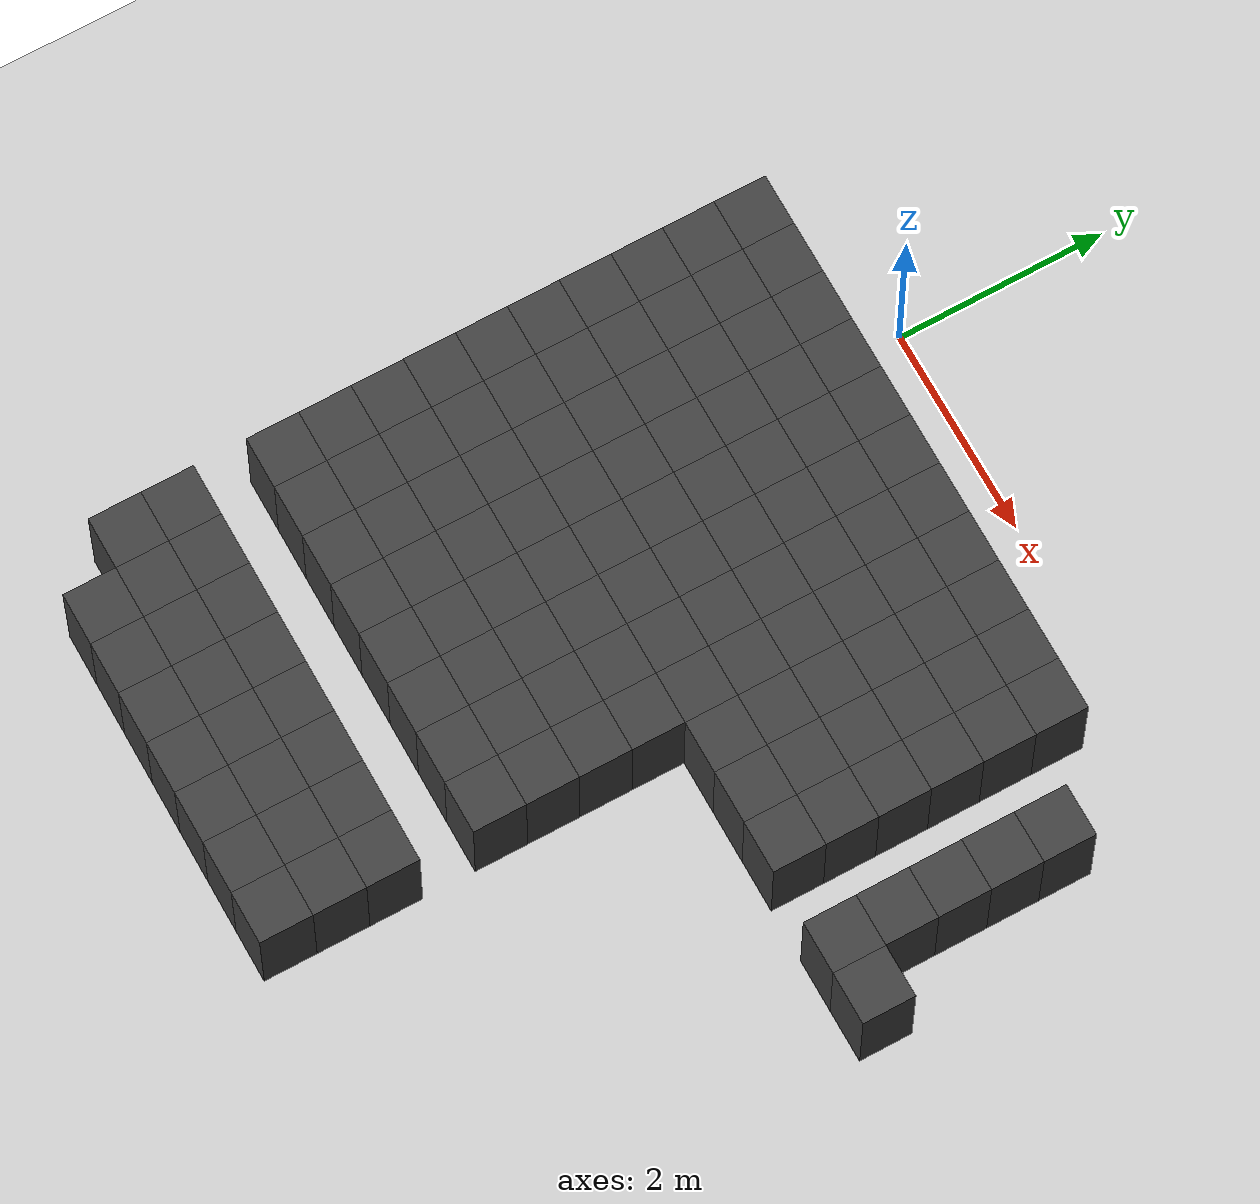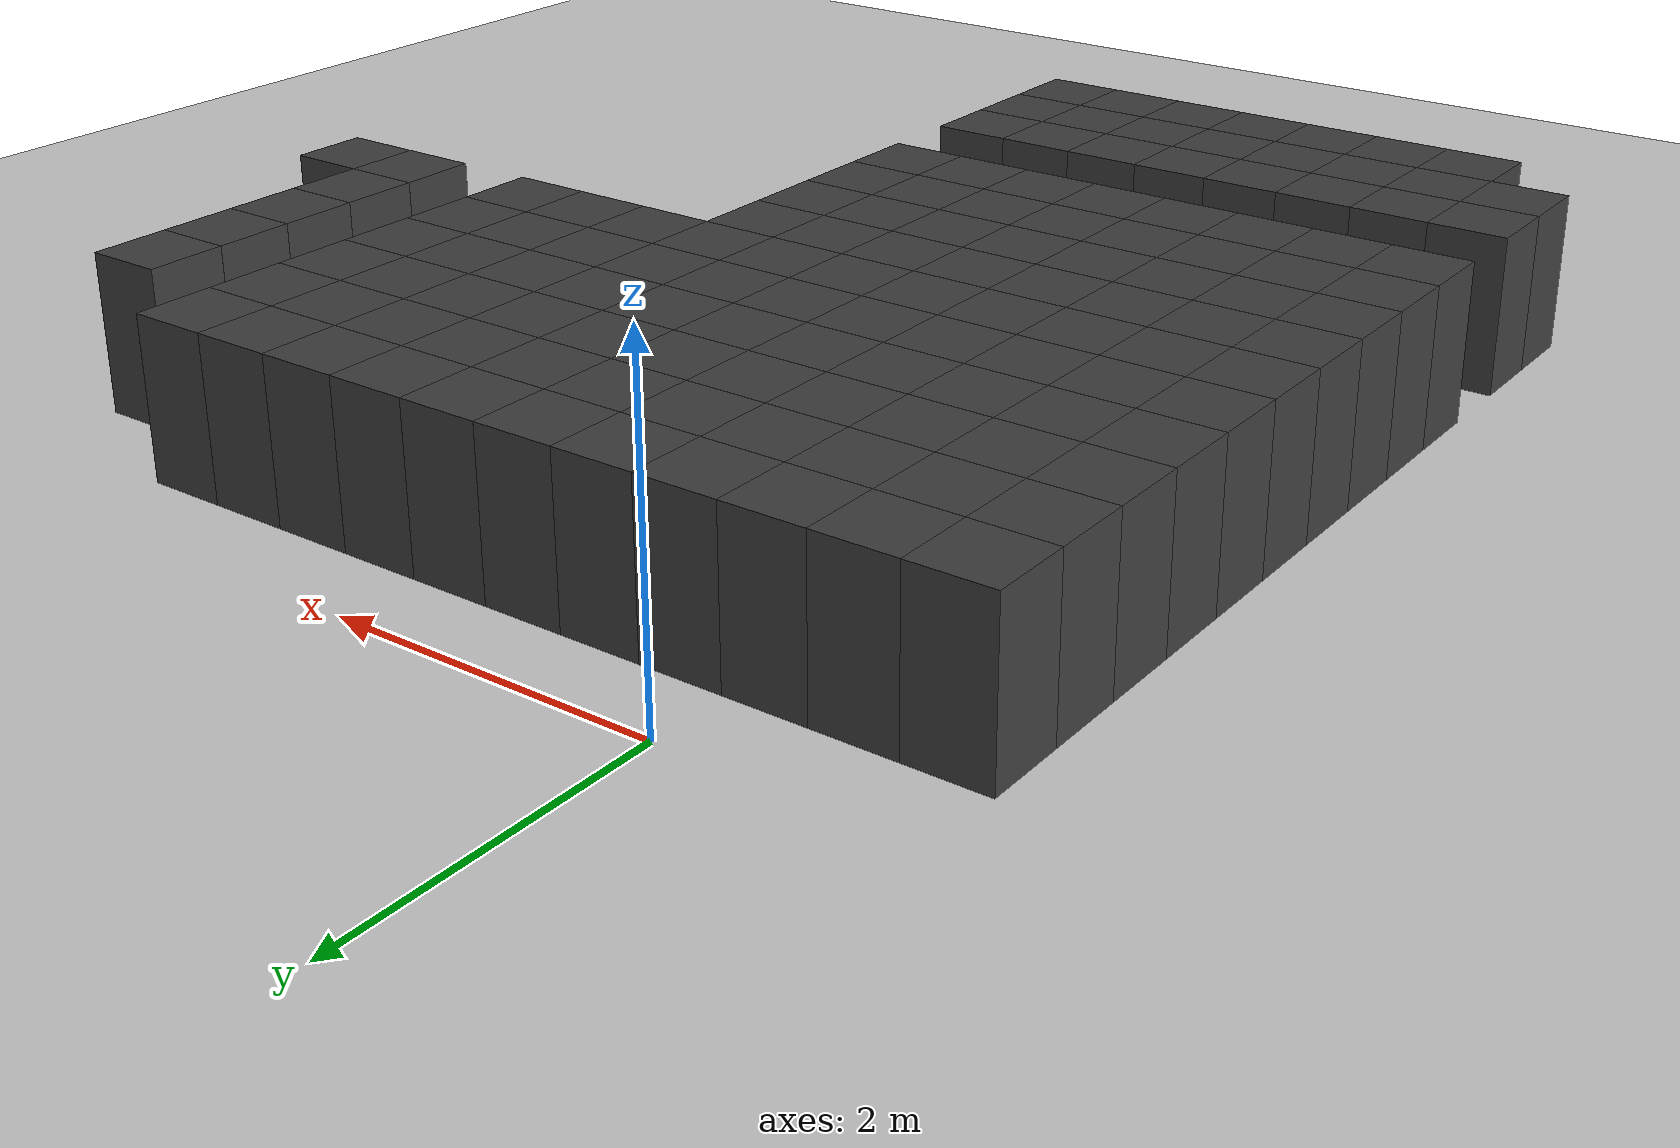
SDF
<sdf version="1.7">
 <world name="map_10777">
  <model name="ground_plane">
   <static>true</static>
   <link name="link">
    <collision name="collision">
     <geometry><plane><normal>0 0 1</normal><size>200 200</size></plane></geometry>
    </collision>
    <visual name="visual">
     <geometry><plane><normal>0 0 1</normal><size>200 200</size></plane></geometry>
     <material><ambient>0.8 0.8 0.8 1</ambient><diffuse>0.8 0.8 0.8 1</diffuse></material>
    </visual>
   </link>
  </model>
  <model name="maze_environment">
   <static>true</static>
   <link name="wall_1194">
    <pose>-1.250 -0.750 0.500 0 0 0</pose>
    <collision name="col"><geometry><box><size>0.5 0.5 1.0</size></box></geometry></collision>
    <visual name="vis">
     <geometry><box><size>0.5 0.5 1.0</size></box></geometry>
     <material><ambient>0.15 0.15 0.15 1</ambient><diffuse>0.25 0.25 0.25 1</diffuse></material>
    </visual>
   </link>
   <link name="wall_1195">
    <pose>-0.750 -0.750 0.500 0 0 0</pose>
    <collision name="col"><geometry><box><size>0.5 0.5 1.0</size></box></geometry></collision>
    <visual name="vis">
     <geometry><box><size>0.5 0.5 1.0</size></box></geometry>
     <material><ambient>0.15 0.15 0.15 1</ambient><diffuse>0.25 0.25 0.25 1</diffuse></material>
    </visual>
   </link>
   <link name="wall_1196">
    <pose>-0.250 -0.750 0.500 0 0 0</pose>
    <collision name="col"><geometry><box><size>0.5 0.5 1.0</size></box></geometry></collision>
    <visual name="vis">
     <geometry><box><size>0.5 0.5 1.0</size></box></geometry>
     <material><ambient>0.15 0.15 0.15 1</ambient><diffuse>0.25 0.25 0.25 1</diffuse></material>
    </visual>
   </link>
   <link name="wall_1197">
    <pose>0.250 -0.750 0.500 0 0 0</pose>
    <collision name="col"><geometry><box><size>0.5 0.5 1.0</size></box></geometry></collision>
    <visual name="vis">
     <geometry><box><size>0.5 0.5 1.0</size></box></geometry>
     <material><ambient>0.15 0.15 0.15 1</ambient><diffuse>0.25 0.25 0.25 1</diffuse></material>
    </visual>
   </link>
   <link name="wall_1198">
    <pose>0.750 -0.750 0.500 0 0 0</pose>
    <collision name="col"><geometry><box><size>0.5 0.5 1.0</size></box></geometry></collision>
    <visual name="vis">
     <geometry><box><size>0.5 0.5 1.0</size></box></geometry>
     <material><ambient>0.15 0.15 0.15 1</ambient><diffuse>0.25 0.25 0.25 1</diffuse></material>
    </visual>
   </link>
   <link name="wall_1199">
    <pose>1.250 -0.750 0.500 0 0 0</pose>
    <collision name="col"><geometry><box><size>0.5 0.5 1.0</size></box></geometry></collision>
    <visual name="vis">
     <geometry><box><size>0.5 0.5 1.0</size></box></geometry>
     <material><ambient>0.15 0.15 0.15 1</ambient><diffuse>0.25 0.25 0.25 1</diffuse></material>
    </visual>
   </link>
   <link name="wall_1200">
    <pose>1.750 -0.750 0.500 0 0 0</pose>
    <collision name="col"><geometry><box><size>0.5 0.5 1.0</size></box></geometry></collision>
    <visual name="vis">
     <geometry><box><size>0.5 0.5 1.0</size></box></geometry>
     <material><ambient>0.15 0.15 0.15 1</ambient><diffuse>0.25 0.25 0.25 1</diffuse></material>
    </visual>
   </link>
   <link name="wall_1201">
    <pose>2.250 -0.750 0.500 0 0 0</pose>
    <collision name="col"><geometry><box><size>0.5 0.5 1.0</size></box></geometry></collision>
    <visual name="vis">
     <geometry><box><size>0.5 0.5 1.0</size></box></geometry>
     <material><ambient>0.15 0.15 0.15 1</ambient><diffuse>0.25 0.25 0.25 1</diffuse></material>
    </visual>
   </link>
   <link name="wall_1202">
    <pose>2.750 -0.750 0.500 0 0 0</pose>
    <collision name="col"><geometry><box><size>0.5 0.5 1.0</size></box></geometry></collision>
    <visual name="vis">
     <geometry><box><size>0.5 0.5 1.0</size></box></geometry>
     <material><ambient>0.15 0.15 0.15 1</ambient><diffuse>0.25 0.25 0.25 1</diffuse></material>
    </visual>
   </link>
   <link name="wall_1203">
    <pose>3.250 -0.750 0.500 0 0 0</pose>
    <collision name="col"><geometry><box><size>0.5 0.5 1.0</size></box></geometry></collision>
    <visual name="vis">
     <geometry><box><size>0.5 0.5 1.0</size></box></geometry>
     <material><ambient>0.15 0.15 0.15 1</ambient><diffuse>0.25 0.25 0.25 1</diffuse></material>
    </visual>
   </link>
   <link name="wall_1204">
    <pose>3.750 -0.750 0.500 0 0 0</pose>
    <collision name="col"><geometry><box><size>0.5 0.5 1.0</size></box></geometry></collision>
    <visual name="vis">
     <geometry><box><size>0.5 0.5 1.0</size></box></geometry>
     <material><ambient>0.15 0.15 0.15 1</ambient><diffuse>0.25 0.25 0.25 1</diffuse></material>
    </visual>
   </link>
   <link name="wall_1232">
    <pose>-1.250 -1.250 0.500 0 0 0</pose>
    <collision name="col"><geometry><box><size>0.5 0.5 1.0</size></box></geometry></collision>
    <visual name="vis">
     <geometry><box><size>0.5 0.5 1.0</size></box></geometry>
     <material><ambient>0.15 0.15 0.15 1</ambient><diffuse>0.25 0.25 0.25 1</diffuse></material>
    </visual>
   </link>
   <link name="wall_1233">
    <pose>-0.750 -1.250 0.500 0 0 0</pose>
    <collision name="col"><geometry><box><size>0.5 0.5 1.0</size></box></geometry></collision>
    <visual name="vis">
     <geometry><box><size>0.5 0.5 1.0</size></box></geometry>
     <material><ambient>0.15 0.15 0.15 1</ambient><diffuse>0.25 0.25 0.25 1</diffuse></material>
    </visual>
   </link>
   <link name="wall_1234">
    <pose>-0.250 -1.250 0.500 0 0 0</pose>
    <collision name="col"><geometry><box><size>0.5 0.5 1.0</size></box></geometry></collision>
    <visual name="vis">
     <geometry><box><size>0.5 0.5 1.0</size></box></geometry>
     <material><ambient>0.15 0.15 0.15 1</ambient><diffuse>0.25 0.25 0.25 1</diffuse></material>
    </visual>
   </link>
   <link name="wall_1235">
    <pose>0.250 -1.250 0.500 0 0 0</pose>
    <collision name="col"><geometry><box><size>0.5 0.5 1.0</size></box></geometry></collision>
    <visual name="vis">
     <geometry><box><size>0.5 0.5 1.0</size></box></geometry>
     <material><ambient>0.15 0.15 0.15 1</ambient><diffuse>0.25 0.25 0.25 1</diffuse></material>
    </visual>
   </link>
   <link name="wall_1236">
    <pose>0.750 -1.250 0.500 0 0 0</pose>
    <collision name="col"><geometry><box><size>0.5 0.5 1.0</size></box></geometry></collision>
    <visual name="vis">
     <geometry><box><size>0.5 0.5 1.0</size></box></geometry>
     <material><ambient>0.15 0.15 0.15 1</ambient><diffuse>0.25 0.25 0.25 1</diffuse></material>
    </visual>
   </link>
   <link name="wall_1237">
    <pose>1.250 -1.250 0.500 0 0 0</pose>
    <collision name="col"><geometry><box><size>0.5 0.5 1.0</size></box></geometry></collision>
    <visual name="vis">
     <geometry><box><size>0.5 0.5 1.0</size></box></geometry>
     <material><ambient>0.15 0.15 0.15 1</ambient><diffuse>0.25 0.25 0.25 1</diffuse></material>
    </visual>
   </link>
   <link name="wall_1238">
    <pose>1.750 -1.250 0.500 0 0 0</pose>
    <collision name="col"><geometry><box><size>0.5 0.5 1.0</size></box></geometry></collision>
    <visual name="vis">
     <geometry><box><size>0.5 0.5 1.0</size></box></geometry>
     <material><ambient>0.15 0.15 0.15 1</ambient><diffuse>0.25 0.25 0.25 1</diffuse></material>
    </visual>
   </link>
   <link name="wall_1239">
    <pose>2.250 -1.250 0.500 0 0 0</pose>
    <collision name="col"><geometry><box><size>0.5 0.5 1.0</size></box></geometry></collision>
    <visual name="vis">
     <geometry><box><size>0.5 0.5 1.0</size></box></geometry>
     <material><ambient>0.15 0.15 0.15 1</ambient><diffuse>0.25 0.25 0.25 1</diffuse></material>
    </visual>
   </link>
   <link name="wall_1240">
    <pose>2.750 -1.250 0.500 0 0 0</pose>
    <collision name="col"><geometry><box><size>0.5 0.5 1.0</size></box></geometry></collision>
    <visual name="vis">
     <geometry><box><size>0.5 0.5 1.0</size></box></geometry>
     <material><ambient>0.15 0.15 0.15 1</ambient><diffuse>0.25 0.25 0.25 1</diffuse></material>
    </visual>
   </link>
   <link name="wall_1241">
    <pose>3.250 -1.250 0.500 0 0 0</pose>
    <collision name="col"><geometry><box><size>0.5 0.5 1.0</size></box></geometry></collision>
    <visual name="vis">
     <geometry><box><size>0.5 0.5 1.0</size></box></geometry>
     <material><ambient>0.15 0.15 0.15 1</ambient><diffuse>0.25 0.25 0.25 1</diffuse></material>
    </visual>
   </link>
   <link name="wall_1242">
    <pose>3.750 -1.250 0.500 0 0 0</pose>
    <collision name="col"><geometry><box><size>0.5 0.5 1.0</size></box></geometry></collision>
    <visual name="vis">
     <geometry><box><size>0.5 0.5 1.0</size></box></geometry>
     <material><ambient>0.15 0.15 0.15 1</ambient><diffuse>0.25 0.25 0.25 1</diffuse></material>
    </visual>
   </link>
   <link name="wall_1243">
    <pose>4.750 -1.250 0.500 0 0 0</pose>
    <collision name="col"><geometry><box><size>0.5 0.5 1.0</size></box></geometry></collision>
    <visual name="vis">
     <geometry><box><size>0.5 0.5 1.0</size></box></geometry>
     <material><ambient>0.15 0.15 0.15 1</ambient><diffuse>0.25 0.25 0.25 1</diffuse></material>
    </visual>
   </link>
   <link name="wall_1275">
    <pose>-1.250 -1.750 0.500 0 0 0</pose>
    <collision name="col"><geometry><box><size>0.5 0.5 1.0</size></box></geometry></collision>
    <visual name="vis">
     <geometry><box><size>0.5 0.5 1.0</size></box></geometry>
     <material><ambient>0.15 0.15 0.15 1</ambient><diffuse>0.25 0.25 0.25 1</diffuse></material>
    </visual>
   </link>
   <link name="wall_1276">
    <pose>-0.750 -1.750 0.500 0 0 0</pose>
    <collision name="col"><geometry><box><size>0.5 0.5 1.0</size></box></geometry></collision>
    <visual name="vis">
     <geometry><box><size>0.5 0.5 1.0</size></box></geometry>
     <material><ambient>0.15 0.15 0.15 1</ambient><diffuse>0.25 0.25 0.25 1</diffuse></material>
    </visual>
   </link>
   <link name="wall_1277">
    <pose>-0.250 -1.750 0.500 0 0 0</pose>
    <collision name="col"><geometry><box><size>0.5 0.5 1.0</size></box></geometry></collision>
    <visual name="vis">
     <geometry><box><size>0.5 0.5 1.0</size></box></geometry>
     <material><ambient>0.15 0.15 0.15 1</ambient><diffuse>0.25 0.25 0.25 1</diffuse></material>
    </visual>
   </link>
   <link name="wall_1278">
    <pose>0.250 -1.750 0.500 0 0 0</pose>
    <collision name="col"><geometry><box><size>0.5 0.5 1.0</size></box></geometry></collision>
    <visual name="vis">
     <geometry><box><size>0.5 0.5 1.0</size></box></geometry>
     <material><ambient>0.15 0.15 0.15 1</ambient><diffuse>0.25 0.25 0.25 1</diffuse></material>
    </visual>
   </link>
   <link name="wall_1279">
    <pose>0.750 -1.750 0.500 0 0 0</pose>
    <collision name="col"><geometry><box><size>0.5 0.5 1.0</size></box></geometry></collision>
    <visual name="vis">
     <geometry><box><size>0.5 0.5 1.0</size></box></geometry>
     <material><ambient>0.15 0.15 0.15 1</ambient><diffuse>0.25 0.25 0.25 1</diffuse></material>
    </visual>
   </link>
   <link name="wall_1280">
    <pose>1.250 -1.750 0.500 0 0 0</pose>
    <collision name="col"><geometry><box><size>0.5 0.5 1.0</size></box></geometry></collision>
    <visual name="vis">
     <geometry><box><size>0.5 0.5 1.0</size></box></geometry>
     <material><ambient>0.15 0.15 0.15 1</ambient><diffuse>0.25 0.25 0.25 1</diffuse></material>
    </visual>
   </link>
   <link name="wall_1281">
    <pose>1.750 -1.750 0.500 0 0 0</pose>
    <collision name="col"><geometry><box><size>0.5 0.5 1.0</size></box></geometry></collision>
    <visual name="vis">
     <geometry><box><size>0.5 0.5 1.0</size></box></geometry>
     <material><ambient>0.15 0.15 0.15 1</ambient><diffuse>0.25 0.25 0.25 1</diffuse></material>
    </visual>
   </link>
   <link name="wall_1282">
    <pose>2.250 -1.750 0.500 0 0 0</pose>
    <collision name="col"><geometry><box><size>0.5 0.5 1.0</size></box></geometry></collision>
    <visual name="vis">
     <geometry><box><size>0.5 0.5 1.0</size></box></geometry>
     <material><ambient>0.15 0.15 0.15 1</ambient><diffuse>0.25 0.25 0.25 1</diffuse></material>
    </visual>
   </link>
   <link name="wall_1283">
    <pose>2.750 -1.750 0.500 0 0 0</pose>
    <collision name="col"><geometry><box><size>0.5 0.5 1.0</size></box></geometry></collision>
    <visual name="vis">
     <geometry><box><size>0.5 0.5 1.0</size></box></geometry>
     <material><ambient>0.15 0.15 0.15 1</ambient><diffuse>0.25 0.25 0.25 1</diffuse></material>
    </visual>
   </link>
   <link name="wall_1284">
    <pose>3.250 -1.750 0.500 0 0 0</pose>
    <collision name="col"><geometry><box><size>0.5 0.5 1.0</size></box></geometry></collision>
    <visual name="vis">
     <geometry><box><size>0.5 0.5 1.0</size></box></geometry>
     <material><ambient>0.15 0.15 0.15 1</ambient><diffuse>0.25 0.25 0.25 1</diffuse></material>
    </visual>
   </link>
   <link name="wall_1285">
    <pose>3.750 -1.750 0.500 0 0 0</pose>
    <collision name="col"><geometry><box><size>0.5 0.5 1.0</size></box></geometry></collision>
    <visual name="vis">
     <geometry><box><size>0.5 0.5 1.0</size></box></geometry>
     <material><ambient>0.15 0.15 0.15 1</ambient><diffuse>0.25 0.25 0.25 1</diffuse></material>
    </visual>
   </link>
   <link name="wall_1286">
    <pose>4.750 -1.750 0.500 0 0 0</pose>
    <collision name="col"><geometry><box><size>0.5 0.5 1.0</size></box></geometry></collision>
    <visual name="vis">
     <geometry><box><size>0.5 0.5 1.0</size></box></geometry>
     <material><ambient>0.15 0.15 0.15 1</ambient><diffuse>0.25 0.25 0.25 1</diffuse></material>
    </visual>
   </link>
   <link name="wall_1318">
    <pose>-1.250 -2.250 0.500 0 0 0</pose>
    <collision name="col"><geometry><box><size>0.5 0.5 1.0</size></box></geometry></collision>
    <visual name="vis">
     <geometry><box><size>0.5 0.5 1.0</size></box></geometry>
     <material><ambient>0.15 0.15 0.15 1</ambient><diffuse>0.25 0.25 0.25 1</diffuse></material>
    </visual>
   </link>
   <link name="wall_1319">
    <pose>-0.750 -2.250 0.500 0 0 0</pose>
    <collision name="col"><geometry><box><size>0.5 0.5 1.0</size></box></geometry></collision>
    <visual name="vis">
     <geometry><box><size>0.5 0.5 1.0</size></box></geometry>
     <material><ambient>0.15 0.15 0.15 1</ambient><diffuse>0.25 0.25 0.25 1</diffuse></material>
    </visual>
   </link>
   <link name="wall_1320">
    <pose>-0.250 -2.250 0.500 0 0 0</pose>
    <collision name="col"><geometry><box><size>0.5 0.5 1.0</size></box></geometry></collision>
    <visual name="vis">
     <geometry><box><size>0.5 0.5 1.0</size></box></geometry>
     <material><ambient>0.15 0.15 0.15 1</ambient><diffuse>0.25 0.25 0.25 1</diffuse></material>
    </visual>
   </link>
   <link name="wall_1321">
    <pose>0.250 -2.250 0.500 0 0 0</pose>
    <collision name="col"><geometry><box><size>0.5 0.5 1.0</size></box></geometry></collision>
    <visual name="vis">
     <geometry><box><size>0.5 0.5 1.0</size></box></geometry>
     <material><ambient>0.15 0.15 0.15 1</ambient><diffuse>0.25 0.25 0.25 1</diffuse></material>
    </visual>
   </link>
   <link name="wall_1322">
    <pose>0.750 -2.250 0.500 0 0 0</pose>
    <collision name="col"><geometry><box><size>0.5 0.5 1.0</size></box></geometry></collision>
    <visual name="vis">
     <geometry><box><size>0.5 0.5 1.0</size></box></geometry>
     <material><ambient>0.15 0.15 0.15 1</ambient><diffuse>0.25 0.25 0.25 1</diffuse></material>
    </visual>
   </link>
   <link name="wall_1323">
    <pose>1.250 -2.250 0.500 0 0 0</pose>
    <collision name="col"><geometry><box><size>0.5 0.5 1.0</size></box></geometry></collision>
    <visual name="vis">
     <geometry><box><size>0.5 0.5 1.0</size></box></geometry>
     <material><ambient>0.15 0.15 0.15 1</ambient><diffuse>0.25 0.25 0.25 1</diffuse></material>
    </visual>
   </link>
   <link name="wall_1324">
    <pose>1.750 -2.250 0.500 0 0 0</pose>
    <collision name="col"><geometry><box><size>0.5 0.5 1.0</size></box></geometry></collision>
    <visual name="vis">
     <geometry><box><size>0.5 0.5 1.0</size></box></geometry>
     <material><ambient>0.15 0.15 0.15 1</ambient><diffuse>0.25 0.25 0.25 1</diffuse></material>
    </visual>
   </link>
   <link name="wall_1325">
    <pose>2.250 -2.250 0.500 0 0 0</pose>
    <collision name="col"><geometry><box><size>0.5 0.5 1.0</size></box></geometry></collision>
    <visual name="vis">
     <geometry><box><size>0.5 0.5 1.0</size></box></geometry>
     <material><ambient>0.15 0.15 0.15 1</ambient><diffuse>0.25 0.25 0.25 1</diffuse></material>
    </visual>
   </link>
   <link name="wall_1326">
    <pose>2.750 -2.250 0.500 0 0 0</pose>
    <collision name="col"><geometry><box><size>0.5 0.5 1.0</size></box></geometry></collision>
    <visual name="vis">
     <geometry><box><size>0.5 0.5 1.0</size></box></geometry>
     <material><ambient>0.15 0.15 0.15 1</ambient><diffuse>0.25 0.25 0.25 1</diffuse></material>
    </visual>
   </link>
   <link name="wall_1327">
    <pose>3.250 -2.250 0.500 0 0 0</pose>
    <collision name="col"><geometry><box><size>0.5 0.5 1.0</size></box></geometry></collision>
    <visual name="vis">
     <geometry><box><size>0.5 0.5 1.0</size></box></geometry>
     <material><ambient>0.15 0.15 0.15 1</ambient><diffuse>0.25 0.25 0.25 1</diffuse></material>
    </visual>
   </link>
   <link name="wall_1328">
    <pose>3.750 -2.250 0.500 0 0 0</pose>
    <collision name="col"><geometry><box><size>0.5 0.5 1.0</size></box></geometry></collision>
    <visual name="vis">
     <geometry><box><size>0.5 0.5 1.0</size></box></geometry>
     <material><ambient>0.15 0.15 0.15 1</ambient><diffuse>0.25 0.25 0.25 1</diffuse></material>
    </visual>
   </link>
   <link name="wall_1329">
    <pose>4.750 -2.250 0.500 0 0 0</pose>
    <collision name="col"><geometry><box><size>0.5 0.5 1.0</size></box></geometry></collision>
    <visual name="vis">
     <geometry><box><size>0.5 0.5 1.0</size></box></geometry>
     <material><ambient>0.15 0.15 0.15 1</ambient><diffuse>0.25 0.25 0.25 1</diffuse></material>
    </visual>
   </link>
   <link name="wall_1366">
    <pose>-1.250 -2.750 0.500 0 0 0</pose>
    <collision name="col"><geometry><box><size>0.5 0.5 1.0</size></box></geometry></collision>
    <visual name="vis">
     <geometry><box><size>0.5 0.5 1.0</size></box></geometry>
     <material><ambient>0.15 0.15 0.15 1</ambient><diffuse>0.25 0.25 0.25 1</diffuse></material>
    </visual>
   </link>
   <link name="wall_1367">
    <pose>-0.750 -2.750 0.500 0 0 0</pose>
    <collision name="col"><geometry><box><size>0.5 0.5 1.0</size></box></geometry></collision>
    <visual name="vis">
     <geometry><box><size>0.5 0.5 1.0</size></box></geometry>
     <material><ambient>0.15 0.15 0.15 1</ambient><diffuse>0.25 0.25 0.25 1</diffuse></material>
    </visual>
   </link>
   <link name="wall_1368">
    <pose>-0.250 -2.750 0.500 0 0 0</pose>
    <collision name="col"><geometry><box><size>0.5 0.5 1.0</size></box></geometry></collision>
    <visual name="vis">
     <geometry><box><size>0.5 0.5 1.0</size></box></geometry>
     <material><ambient>0.15 0.15 0.15 1</ambient><diffuse>0.25 0.25 0.25 1</diffuse></material>
    </visual>
   </link>
   <link name="wall_1369">
    <pose>0.250 -2.750 0.500 0 0 0</pose>
    <collision name="col"><geometry><box><size>0.5 0.5 1.0</size></box></geometry></collision>
    <visual name="vis">
     <geometry><box><size>0.5 0.5 1.0</size></box></geometry>
     <material><ambient>0.15 0.15 0.15 1</ambient><diffuse>0.25 0.25 0.25 1</diffuse></material>
    </visual>
   </link>
   <link name="wall_1370">
    <pose>0.750 -2.750 0.500 0 0 0</pose>
    <collision name="col"><geometry><box><size>0.5 0.5 1.0</size></box></geometry></collision>
    <visual name="vis">
     <geometry><box><size>0.5 0.5 1.0</size></box></geometry>
     <material><ambient>0.15 0.15 0.15 1</ambient><diffuse>0.25 0.25 0.25 1</diffuse></material>
    </visual>
   </link>
   <link name="wall_1371">
    <pose>1.250 -2.750 0.500 0 0 0</pose>
    <collision name="col"><geometry><box><size>0.5 0.5 1.0</size></box></geometry></collision>
    <visual name="vis">
     <geometry><box><size>0.5 0.5 1.0</size></box></geometry>
     <material><ambient>0.15 0.15 0.15 1</ambient><diffuse>0.25 0.25 0.25 1</diffuse></material>
    </visual>
   </link>
   <link name="wall_1372">
    <pose>1.750 -2.750 0.500 0 0 0</pose>
    <collision name="col"><geometry><box><size>0.5 0.5 1.0</size></box></geometry></collision>
    <visual name="vis">
     <geometry><box><size>0.5 0.5 1.0</size></box></geometry>
     <material><ambient>0.15 0.15 0.15 1</ambient><diffuse>0.25 0.25 0.25 1</diffuse></material>
    </visual>
   </link>
   <link name="wall_1373">
    <pose>2.250 -2.750 0.500 0 0 0</pose>
    <collision name="col"><geometry><box><size>0.5 0.5 1.0</size></box></geometry></collision>
    <visual name="vis">
     <geometry><box><size>0.5 0.5 1.0</size></box></geometry>
     <material><ambient>0.15 0.15 0.15 1</ambient><diffuse>0.25 0.25 0.25 1</diffuse></material>
    </visual>
   </link>
   <link name="wall_1374">
    <pose>2.750 -2.750 0.500 0 0 0</pose>
    <collision name="col"><geometry><box><size>0.5 0.5 1.0</size></box></geometry></collision>
    <visual name="vis">
     <geometry><box><size>0.5 0.5 1.0</size></box></geometry>
     <material><ambient>0.15 0.15 0.15 1</ambient><diffuse>0.25 0.25 0.25 1</diffuse></material>
    </visual>
   </link>
   <link name="wall_1375">
    <pose>3.250 -2.750 0.500 0 0 0</pose>
    <collision name="col"><geometry><box><size>0.5 0.5 1.0</size></box></geometry></collision>
    <visual name="vis">
     <geometry><box><size>0.5 0.5 1.0</size></box></geometry>
     <material><ambient>0.15 0.15 0.15 1</ambient><diffuse>0.25 0.25 0.25 1</diffuse></material>
    </visual>
   </link>
   <link name="wall_1376">
    <pose>3.750 -2.750 0.500 0 0 0</pose>
    <collision name="col"><geometry><box><size>0.5 0.5 1.0</size></box></geometry></collision>
    <visual name="vis">
     <geometry><box><size>0.5 0.5 1.0</size></box></geometry>
     <material><ambient>0.15 0.15 0.15 1</ambient><diffuse>0.25 0.25 0.25 1</diffuse></material>
    </visual>
   </link>
   <link name="wall_1377">
    <pose>4.750 -2.750 0.500 0 0 0</pose>
    <collision name="col"><geometry><box><size>0.5 0.5 1.0</size></box></geometry></collision>
    <visual name="vis">
     <geometry><box><size>0.5 0.5 1.0</size></box></geometry>
     <material><ambient>0.15 0.15 0.15 1</ambient><diffuse>0.25 0.25 0.25 1</diffuse></material>
    </visual>
   </link>
   <link name="wall_1414">
    <pose>-1.250 -3.250 0.500 0 0 0</pose>
    <collision name="col"><geometry><box><size>0.5 0.5 1.0</size></box></geometry></collision>
    <visual name="vis">
     <geometry><box><size>0.5 0.5 1.0</size></box></geometry>
     <material><ambient>0.15 0.15 0.15 1</ambient><diffuse>0.25 0.25 0.25 1</diffuse></material>
    </visual>
   </link>
   <link name="wall_1415">
    <pose>-0.750 -3.250 0.500 0 0 0</pose>
    <collision name="col"><geometry><box><size>0.5 0.5 1.0</size></box></geometry></collision>
    <visual name="vis">
     <geometry><box><size>0.5 0.5 1.0</size></box></geometry>
     <material><ambient>0.15 0.15 0.15 1</ambient><diffuse>0.25 0.25 0.25 1</diffuse></material>
    </visual>
   </link>
   <link name="wall_1416">
    <pose>-0.250 -3.250 0.500 0 0 0</pose>
    <collision name="col"><geometry><box><size>0.5 0.5 1.0</size></box></geometry></collision>
    <visual name="vis">
     <geometry><box><size>0.5 0.5 1.0</size></box></geometry>
     <material><ambient>0.15 0.15 0.15 1</ambient><diffuse>0.25 0.25 0.25 1</diffuse></material>
    </visual>
   </link>
   <link name="wall_1417">
    <pose>0.250 -3.250 0.500 0 0 0</pose>
    <collision name="col"><geometry><box><size>0.5 0.5 1.0</size></box></geometry></collision>
    <visual name="vis">
     <geometry><box><size>0.5 0.5 1.0</size></box></geometry>
     <material><ambient>0.15 0.15 0.15 1</ambient><diffuse>0.25 0.25 0.25 1</diffuse></material>
    </visual>
   </link>
   <link name="wall_1418">
    <pose>0.750 -3.250 0.500 0 0 0</pose>
    <collision name="col"><geometry><box><size>0.5 0.5 1.0</size></box></geometry></collision>
    <visual name="vis">
     <geometry><box><size>0.5 0.5 1.0</size></box></geometry>
     <material><ambient>0.15 0.15 0.15 1</ambient><diffuse>0.25 0.25 0.25 1</diffuse></material>
    </visual>
   </link>
   <link name="wall_1419">
    <pose>1.250 -3.250 0.500 0 0 0</pose>
    <collision name="col"><geometry><box><size>0.5 0.5 1.0</size></box></geometry></collision>
    <visual name="vis">
     <geometry><box><size>0.5 0.5 1.0</size></box></geometry>
     <material><ambient>0.15 0.15 0.15 1</ambient><diffuse>0.25 0.25 0.25 1</diffuse></material>
    </visual>
   </link>
   <link name="wall_1420">
    <pose>1.750 -3.250 0.500 0 0 0</pose>
    <collision name="col"><geometry><box><size>0.5 0.5 1.0</size></box></geometry></collision>
    <visual name="vis">
     <geometry><box><size>0.5 0.5 1.0</size></box></geometry>
     <material><ambient>0.15 0.15 0.15 1</ambient><diffuse>0.25 0.25 0.25 1</diffuse></material>
    </visual>
   </link>
   <link name="wall_1421">
    <pose>2.250 -3.250 0.500 0 0 0</pose>
    <collision name="col"><geometry><box><size>0.5 0.5 1.0</size></box></geometry></collision>
    <visual name="vis">
     <geometry><box><size>0.5 0.5 1.0</size></box></geometry>
     <material><ambient>0.15 0.15 0.15 1</ambient><diffuse>0.25 0.25 0.25 1</diffuse></material>
    </visual>
   </link>
   <link name="wall_1422">
    <pose>2.750 -3.250 0.500 0 0 0</pose>
    <collision name="col"><geometry><box><size>0.5 0.5 1.0</size></box></geometry></collision>
    <visual name="vis">
     <geometry><box><size>0.5 0.5 1.0</size></box></geometry>
     <material><ambient>0.15 0.15 0.15 1</ambient><diffuse>0.25 0.25 0.25 1</diffuse></material>
    </visual>
   </link>
   <link name="wall_1423">
    <pose>3.250 -3.250 0.500 0 0 0</pose>
    <collision name="col"><geometry><box><size>0.5 0.5 1.0</size></box></geometry></collision>
    <visual name="vis">
     <geometry><box><size>0.5 0.5 1.0</size></box></geometry>
     <material><ambient>0.15 0.15 0.15 1</ambient><diffuse>0.25 0.25 0.25 1</diffuse></material>
    </visual>
   </link>
   <link name="wall_1424">
    <pose>3.750 -3.250 0.500 0 0 0</pose>
    <collision name="col"><geometry><box><size>0.5 0.5 1.0</size></box></geometry></collision>
    <visual name="vis">
     <geometry><box><size>0.5 0.5 1.0</size></box></geometry>
     <material><ambient>0.15 0.15 0.15 1</ambient><diffuse>0.25 0.25 0.25 1</diffuse></material>
    </visual>
   </link>
   <link name="wall_1425">
    <pose>4.750 -3.250 0.500 0 0 0</pose>
    <collision name="col"><geometry><box><size>0.5 0.5 1.0</size></box></geometry></collision>
    <visual name="vis">
     <geometry><box><size>0.5 0.5 1.0</size></box></geometry>
     <material><ambient>0.15 0.15 0.15 1</ambient><diffuse>0.25 0.25 0.25 1</diffuse></material>
    </visual>
   </link>
   <link name="wall_1426">
    <pose>5.250 -3.250 0.500 0 0 0</pose>
    <collision name="col"><geometry><box><size>0.5 0.5 1.0</size></box></geometry></collision>
    <visual name="vis">
     <geometry><box><size>0.5 0.5 1.0</size></box></geometry>
     <material><ambient>0.15 0.15 0.15 1</ambient><diffuse>0.25 0.25 0.25 1</diffuse></material>
    </visual>
   </link>
   <link name="wall_1462">
    <pose>-1.250 -3.750 0.500 0 0 0</pose>
    <collision name="col"><geometry><box><size>0.5 0.5 1.0</size></box></geometry></collision>
    <visual name="vis">
     <geometry><box><size>0.5 0.5 1.0</size></box></geometry>
     <material><ambient>0.15 0.15 0.15 1</ambient><diffuse>0.25 0.25 0.25 1</diffuse></material>
    </visual>
   </link>
   <link name="wall_1463">
    <pose>-0.750 -3.750 0.500 0 0 0</pose>
    <collision name="col"><geometry><box><size>0.5 0.5 1.0</size></box></geometry></collision>
    <visual name="vis">
     <geometry><box><size>0.5 0.5 1.0</size></box></geometry>
     <material><ambient>0.15 0.15 0.15 1</ambient><diffuse>0.25 0.25 0.25 1</diffuse></material>
    </visual>
   </link>
   <link name="wall_1464">
    <pose>-0.250 -3.750 0.500 0 0 0</pose>
    <collision name="col"><geometry><box><size>0.5 0.5 1.0</size></box></geometry></collision>
    <visual name="vis">
     <geometry><box><size>0.5 0.5 1.0</size></box></geometry>
     <material><ambient>0.15 0.15 0.15 1</ambient><diffuse>0.25 0.25 0.25 1</diffuse></material>
    </visual>
   </link>
   <link name="wall_1465">
    <pose>0.250 -3.750 0.500 0 0 0</pose>
    <collision name="col"><geometry><box><size>0.5 0.5 1.0</size></box></geometry></collision>
    <visual name="vis">
     <geometry><box><size>0.5 0.5 1.0</size></box></geometry>
     <material><ambient>0.15 0.15 0.15 1</ambient><diffuse>0.25 0.25 0.25 1</diffuse></material>
    </visual>
   </link>
   <link name="wall_1466">
    <pose>0.750 -3.750 0.500 0 0 0</pose>
    <collision name="col"><geometry><box><size>0.5 0.5 1.0</size></box></geometry></collision>
    <visual name="vis">
     <geometry><box><size>0.5 0.5 1.0</size></box></geometry>
     <material><ambient>0.15 0.15 0.15 1</ambient><diffuse>0.25 0.25 0.25 1</diffuse></material>
    </visual>
   </link>
   <link name="wall_1467">
    <pose>1.250 -3.750 0.500 0 0 0</pose>
    <collision name="col"><geometry><box><size>0.5 0.5 1.0</size></box></geometry></collision>
    <visual name="vis">
     <geometry><box><size>0.5 0.5 1.0</size></box></geometry>
     <material><ambient>0.15 0.15 0.15 1</ambient><diffuse>0.25 0.25 0.25 1</diffuse></material>
    </visual>
   </link>
   <link name="wall_1468">
    <pose>1.750 -3.750 0.500 0 0 0</pose>
    <collision name="col"><geometry><box><size>0.5 0.5 1.0</size></box></geometry></collision>
    <visual name="vis">
     <geometry><box><size>0.5 0.5 1.0</size></box></geometry>
     <material><ambient>0.15 0.15 0.15 1</ambient><diffuse>0.25 0.25 0.25 1</diffuse></material>
    </visual>
   </link>
   <link name="wall_1469">
    <pose>2.250 -3.750 0.500 0 0 0</pose>
    <collision name="col"><geometry><box><size>0.5 0.5 1.0</size></box></geometry></collision>
    <visual name="vis">
     <geometry><box><size>0.5 0.5 1.0</size></box></geometry>
     <material><ambient>0.15 0.15 0.15 1</ambient><diffuse>0.25 0.25 0.25 1</diffuse></material>
    </visual>
   </link>
   <link name="wall_1501">
    <pose>-1.250 -4.250 0.500 0 0 0</pose>
    <collision name="col"><geometry><box><size>0.5 0.5 1.0</size></box></geometry></collision>
    <visual name="vis">
     <geometry><box><size>0.5 0.5 1.0</size></box></geometry>
     <material><ambient>0.15 0.15 0.15 1</ambient><diffuse>0.25 0.25 0.25 1</diffuse></material>
    </visual>
   </link>
   <link name="wall_1502">
    <pose>-0.750 -4.250 0.500 0 0 0</pose>
    <collision name="col"><geometry><box><size>0.5 0.5 1.0</size></box></geometry></collision>
    <visual name="vis">
     <geometry><box><size>0.5 0.5 1.0</size></box></geometry>
     <material><ambient>0.15 0.15 0.15 1</ambient><diffuse>0.25 0.25 0.25 1</diffuse></material>
    </visual>
   </link>
   <link name="wall_1503">
    <pose>-0.250 -4.250 0.500 0 0 0</pose>
    <collision name="col"><geometry><box><size>0.5 0.5 1.0</size></box></geometry></collision>
    <visual name="vis">
     <geometry><box><size>0.5 0.5 1.0</size></box></geometry>
     <material><ambient>0.15 0.15 0.15 1</ambient><diffuse>0.25 0.25 0.25 1</diffuse></material>
    </visual>
   </link>
   <link name="wall_1504">
    <pose>0.250 -4.250 0.500 0 0 0</pose>
    <collision name="col"><geometry><box><size>0.5 0.5 1.0</size></box></geometry></collision>
    <visual name="vis">
     <geometry><box><size>0.5 0.5 1.0</size></box></geometry>
     <material><ambient>0.15 0.15 0.15 1</ambient><diffuse>0.25 0.25 0.25 1</diffuse></material>
    </visual>
   </link>
   <link name="wall_1505">
    <pose>0.750 -4.250 0.500 0 0 0</pose>
    <collision name="col"><geometry><box><size>0.5 0.5 1.0</size></box></geometry></collision>
    <visual name="vis">
     <geometry><box><size>0.5 0.5 1.0</size></box></geometry>
     <material><ambient>0.15 0.15 0.15 1</ambient><diffuse>0.25 0.25 0.25 1</diffuse></material>
    </visual>
   </link>
   <link name="wall_1506">
    <pose>1.250 -4.250 0.500 0 0 0</pose>
    <collision name="col"><geometry><box><size>0.5 0.5 1.0</size></box></geometry></collision>
    <visual name="vis">
     <geometry><box><size>0.5 0.5 1.0</size></box></geometry>
     <material><ambient>0.15 0.15 0.15 1</ambient><diffuse>0.25 0.25 0.25 1</diffuse></material>
    </visual>
   </link>
   <link name="wall_1507">
    <pose>1.750 -4.250 0.500 0 0 0</pose>
    <collision name="col"><geometry><box><size>0.5 0.5 1.0</size></box></geometry></collision>
    <visual name="vis">
     <geometry><box><size>0.5 0.5 1.0</size></box></geometry>
     <material><ambient>0.15 0.15 0.15 1</ambient><diffuse>0.25 0.25 0.25 1</diffuse></material>
    </visual>
   </link>
   <link name="wall_1508">
    <pose>2.250 -4.250 0.500 0 0 0</pose>
    <collision name="col"><geometry><box><size>0.5 0.5 1.0</size></box></geometry></collision>
    <visual name="vis">
     <geometry><box><size>0.5 0.5 1.0</size></box></geometry>
     <material><ambient>0.15 0.15 0.15 1</ambient><diffuse>0.25 0.25 0.25 1</diffuse></material>
    </visual>
   </link>
   <link name="wall_1540">
    <pose>-1.250 -4.750 0.500 0 0 0</pose>
    <collision name="col"><geometry><box><size>0.5 0.5 1.0</size></box></geometry></collision>
    <visual name="vis">
     <geometry><box><size>0.5 0.5 1.0</size></box></geometry>
     <material><ambient>0.15 0.15 0.15 1</ambient><diffuse>0.25 0.25 0.25 1</diffuse></material>
    </visual>
   </link>
   <link name="wall_1541">
    <pose>-0.750 -4.750 0.500 0 0 0</pose>
    <collision name="col"><geometry><box><size>0.5 0.5 1.0</size></box></geometry></collision>
    <visual name="vis">
     <geometry><box><size>0.5 0.5 1.0</size></box></geometry>
     <material><ambient>0.15 0.15 0.15 1</ambient><diffuse>0.25 0.25 0.25 1</diffuse></material>
    </visual>
   </link>
   <link name="wall_1542">
    <pose>-0.250 -4.750 0.500 0 0 0</pose>
    <collision name="col"><geometry><box><size>0.5 0.5 1.0</size></box></geometry></collision>
    <visual name="vis">
     <geometry><box><size>0.5 0.5 1.0</size></box></geometry>
     <material><ambient>0.15 0.15 0.15 1</ambient><diffuse>0.25 0.25 0.25 1</diffuse></material>
    </visual>
   </link>
   <link name="wall_1543">
    <pose>0.250 -4.750 0.500 0 0 0</pose>
    <collision name="col"><geometry><box><size>0.5 0.5 1.0</size></box></geometry></collision>
    <visual name="vis">
     <geometry><box><size>0.5 0.5 1.0</size></box></geometry>
     <material><ambient>0.15 0.15 0.15 1</ambient><diffuse>0.25 0.25 0.25 1</diffuse></material>
    </visual>
   </link>
   <link name="wall_1544">
    <pose>0.750 -4.750 0.500 0 0 0</pose>
    <collision name="col"><geometry><box><size>0.5 0.5 1.0</size></box></geometry></collision>
    <visual name="vis">
     <geometry><box><size>0.5 0.5 1.0</size></box></geometry>
     <material><ambient>0.15 0.15 0.15 1</ambient><diffuse>0.25 0.25 0.25 1</diffuse></material>
    </visual>
   </link>
   <link name="wall_1545">
    <pose>1.250 -4.750 0.500 0 0 0</pose>
    <collision name="col"><geometry><box><size>0.5 0.5 1.0</size></box></geometry></collision>
    <visual name="vis">
     <geometry><box><size>0.5 0.5 1.0</size></box></geometry>
     <material><ambient>0.15 0.15 0.15 1</ambient><diffuse>0.25 0.25 0.25 1</diffuse></material>
    </visual>
   </link>
   <link name="wall_1546">
    <pose>1.750 -4.750 0.500 0 0 0</pose>
    <collision name="col"><geometry><box><size>0.5 0.5 1.0</size></box></geometry></collision>
    <visual name="vis">
     <geometry><box><size>0.5 0.5 1.0</size></box></geometry>
     <material><ambient>0.15 0.15 0.15 1</ambient><diffuse>0.25 0.25 0.25 1</diffuse></material>
    </visual>
   </link>
   <link name="wall_1547">
    <pose>2.250 -4.750 0.500 0 0 0</pose>
    <collision name="col"><geometry><box><size>0.5 0.5 1.0</size></box></geometry></collision>
    <visual name="vis">
     <geometry><box><size>0.5 0.5 1.0</size></box></geometry>
     <material><ambient>0.15 0.15 0.15 1</ambient><diffuse>0.25 0.25 0.25 1</diffuse></material>
    </visual>
   </link>
   <link name="wall_1579">
    <pose>-1.250 -5.250 0.500 0 0 0</pose>
    <collision name="col"><geometry><box><size>0.5 0.5 1.0</size></box></geometry></collision>
    <visual name="vis">
     <geometry><box><size>0.5 0.5 1.0</size></box></geometry>
     <material><ambient>0.15 0.15 0.15 1</ambient><diffuse>0.25 0.25 0.25 1</diffuse></material>
    </visual>
   </link>
   <link name="wall_1580">
    <pose>-0.750 -5.250 0.500 0 0 0</pose>
    <collision name="col"><geometry><box><size>0.5 0.5 1.0</size></box></geometry></collision>
    <visual name="vis">
     <geometry><box><size>0.5 0.5 1.0</size></box></geometry>
     <material><ambient>0.15 0.15 0.15 1</ambient><diffuse>0.25 0.25 0.25 1</diffuse></material>
    </visual>
   </link>
   <link name="wall_1581">
    <pose>-0.250 -5.250 0.500 0 0 0</pose>
    <collision name="col"><geometry><box><size>0.5 0.5 1.0</size></box></geometry></collision>
    <visual name="vis">
     <geometry><box><size>0.5 0.5 1.0</size></box></geometry>
     <material><ambient>0.15 0.15 0.15 1</ambient><diffuse>0.25 0.25 0.25 1</diffuse></material>
    </visual>
   </link>
   <link name="wall_1582">
    <pose>0.250 -5.250 0.500 0 0 0</pose>
    <collision name="col"><geometry><box><size>0.5 0.5 1.0</size></box></geometry></collision>
    <visual name="vis">
     <geometry><box><size>0.5 0.5 1.0</size></box></geometry>
     <material><ambient>0.15 0.15 0.15 1</ambient><diffuse>0.25 0.25 0.25 1</diffuse></material>
    </visual>
   </link>
   <link name="wall_1583">
    <pose>0.750 -5.250 0.500 0 0 0</pose>
    <collision name="col"><geometry><box><size>0.5 0.5 1.0</size></box></geometry></collision>
    <visual name="vis">
     <geometry><box><size>0.5 0.5 1.0</size></box></geometry>
     <material><ambient>0.15 0.15 0.15 1</ambient><diffuse>0.25 0.25 0.25 1</diffuse></material>
    </visual>
   </link>
   <link name="wall_1584">
    <pose>1.250 -5.250 0.500 0 0 0</pose>
    <collision name="col"><geometry><box><size>0.5 0.5 1.0</size></box></geometry></collision>
    <visual name="vis">
     <geometry><box><size>0.5 0.5 1.0</size></box></geometry>
     <material><ambient>0.15 0.15 0.15 1</ambient><diffuse>0.25 0.25 0.25 1</diffuse></material>
    </visual>
   </link>
   <link name="wall_1585">
    <pose>1.750 -5.250 0.500 0 0 0</pose>
    <collision name="col"><geometry><box><size>0.5 0.5 1.0</size></box></geometry></collision>
    <visual name="vis">
     <geometry><box><size>0.5 0.5 1.0</size></box></geometry>
     <material><ambient>0.15 0.15 0.15 1</ambient><diffuse>0.25 0.25 0.25 1</diffuse></material>
    </visual>
   </link>
   <link name="wall_1586">
    <pose>2.250 -5.250 0.500 0 0 0</pose>
    <collision name="col"><geometry><box><size>0.5 0.5 1.0</size></box></geometry></collision>
    <visual name="vis">
     <geometry><box><size>0.5 0.5 1.0</size></box></geometry>
     <material><ambient>0.15 0.15 0.15 1</ambient><diffuse>0.25 0.25 0.25 1</diffuse></material>
    </visual>
   </link>
   <link name="wall_1633">
    <pose>-1.250 -6.250 0.500 0 0 0</pose>
    <collision name="col"><geometry><box><size>0.5 0.5 1.0</size></box></geometry></collision>
    <visual name="vis">
     <geometry><box><size>0.5 0.5 1.0</size></box></geometry>
     <material><ambient>0.15 0.15 0.15 1</ambient><diffuse>0.25 0.25 0.25 1</diffuse></material>
    </visual>
   </link>
   <link name="wall_1634">
    <pose>-0.750 -6.250 0.500 0 0 0</pose>
    <collision name="col"><geometry><box><size>0.5 0.5 1.0</size></box></geometry></collision>
    <visual name="vis">
     <geometry><box><size>0.5 0.5 1.0</size></box></geometry>
     <material><ambient>0.15 0.15 0.15 1</ambient><diffuse>0.25 0.25 0.25 1</diffuse></material>
    </visual>
   </link>
   <link name="wall_1635">
    <pose>-0.250 -6.250 0.500 0 0 0</pose>
    <collision name="col"><geometry><box><size>0.5 0.5 1.0</size></box></geometry></collision>
    <visual name="vis">
     <geometry><box><size>0.5 0.5 1.0</size></box></geometry>
     <material><ambient>0.15 0.15 0.15 1</ambient><diffuse>0.25 0.25 0.25 1</diffuse></material>
    </visual>
   </link>
   <link name="wall_1636">
    <pose>0.250 -6.250 0.500 0 0 0</pose>
    <collision name="col"><geometry><box><size>0.5 0.5 1.0</size></box></geometry></collision>
    <visual name="vis">
     <geometry><box><size>0.5 0.5 1.0</size></box></geometry>
     <material><ambient>0.15 0.15 0.15 1</ambient><diffuse>0.25 0.25 0.25 1</diffuse></material>
    </visual>
   </link>
   <link name="wall_1637">
    <pose>0.750 -6.250 0.500 0 0 0</pose>
    <collision name="col"><geometry><box><size>0.5 0.5 1.0</size></box></geometry></collision>
    <visual name="vis">
     <geometry><box><size>0.5 0.5 1.0</size></box></geometry>
     <material><ambient>0.15 0.15 0.15 1</ambient><diffuse>0.25 0.25 0.25 1</diffuse></material>
    </visual>
   </link>
   <link name="wall_1638">
    <pose>1.250 -6.250 0.500 0 0 0</pose>
    <collision name="col"><geometry><box><size>0.5 0.5 1.0</size></box></geometry></collision>
    <visual name="vis">
     <geometry><box><size>0.5 0.5 1.0</size></box></geometry>
     <material><ambient>0.15 0.15 0.15 1</ambient><diffuse>0.25 0.25 0.25 1</diffuse></material>
    </visual>
   </link>
   <link name="wall_1639">
    <pose>1.750 -6.250 0.500 0 0 0</pose>
    <collision name="col"><geometry><box><size>0.5 0.5 1.0</size></box></geometry></collision>
    <visual name="vis">
     <geometry><box><size>0.5 0.5 1.0</size></box></geometry>
     <material><ambient>0.15 0.15 0.15 1</ambient><diffuse>0.25 0.25 0.25 1</diffuse></material>
    </visual>
   </link>
   <link name="wall_1640">
    <pose>2.250 -6.250 0.500 0 0 0</pose>
    <collision name="col"><geometry><box><size>0.5 0.5 1.0</size></box></geometry></collision>
    <visual name="vis">
     <geometry><box><size>0.5 0.5 1.0</size></box></geometry>
     <material><ambient>0.15 0.15 0.15 1</ambient><diffuse>0.25 0.25 0.25 1</diffuse></material>
    </visual>
   </link>
   <link name="wall_1672">
    <pose>-1.250 -6.750 0.500 0 0 0</pose>
    <collision name="col"><geometry><box><size>0.5 0.5 1.0</size></box></geometry></collision>
    <visual name="vis">
     <geometry><box><size>0.5 0.5 1.0</size></box></geometry>
     <material><ambient>0.15 0.15 0.15 1</ambient><diffuse>0.25 0.25 0.25 1</diffuse></material>
    </visual>
   </link>
   <link name="wall_1673">
    <pose>-0.750 -6.750 0.500 0 0 0</pose>
    <collision name="col"><geometry><box><size>0.5 0.5 1.0</size></box></geometry></collision>
    <visual name="vis">
     <geometry><box><size>0.5 0.5 1.0</size></box></geometry>
     <material><ambient>0.15 0.15 0.15 1</ambient><diffuse>0.25 0.25 0.25 1</diffuse></material>
    </visual>
   </link>
   <link name="wall_1674">
    <pose>-0.250 -6.750 0.500 0 0 0</pose>
    <collision name="col"><geometry><box><size>0.5 0.5 1.0</size></box></geometry></collision>
    <visual name="vis">
     <geometry><box><size>0.5 0.5 1.0</size></box></geometry>
     <material><ambient>0.15 0.15 0.15 1</ambient><diffuse>0.25 0.25 0.25 1</diffuse></material>
    </visual>
   </link>
   <link name="wall_1675">
    <pose>0.250 -6.750 0.500 0 0 0</pose>
    <collision name="col"><geometry><box><size>0.5 0.5 1.0</size></box></geometry></collision>
    <visual name="vis">
     <geometry><box><size>0.5 0.5 1.0</size></box></geometry>
     <material><ambient>0.15 0.15 0.15 1</ambient><diffuse>0.25 0.25 0.25 1</diffuse></material>
    </visual>
   </link>
   <link name="wall_1676">
    <pose>0.750 -6.750 0.500 0 0 0</pose>
    <collision name="col"><geometry><box><size>0.5 0.5 1.0</size></box></geometry></collision>
    <visual name="vis">
     <geometry><box><size>0.5 0.5 1.0</size></box></geometry>
     <material><ambient>0.15 0.15 0.15 1</ambient><diffuse>0.25 0.25 0.25 1</diffuse></material>
    </visual>
   </link>
   <link name="wall_1677">
    <pose>1.250 -6.750 0.500 0 0 0</pose>
    <collision name="col"><geometry><box><size>0.5 0.5 1.0</size></box></geometry></collision>
    <visual name="vis">
     <geometry><box><size>0.5 0.5 1.0</size></box></geometry>
     <material><ambient>0.15 0.15 0.15 1</ambient><diffuse>0.25 0.25 0.25 1</diffuse></material>
    </visual>
   </link>
   <link name="wall_1678">
    <pose>1.750 -6.750 0.500 0 0 0</pose>
    <collision name="col"><geometry><box><size>0.5 0.5 1.0</size></box></geometry></collision>
    <visual name="vis">
     <geometry><box><size>0.5 0.5 1.0</size></box></geometry>
     <material><ambient>0.15 0.15 0.15 1</ambient><diffuse>0.25 0.25 0.25 1</diffuse></material>
    </visual>
   </link>
   <link name="wall_1679">
    <pose>2.250 -6.750 0.500 0 0 0</pose>
    <collision name="col"><geometry><box><size>0.5 0.5 1.0</size></box></geometry></collision>
    <visual name="vis">
     <geometry><box><size>0.5 0.5 1.0</size></box></geometry>
     <material><ambient>0.15 0.15 0.15 1</ambient><diffuse>0.25 0.25 0.25 1</diffuse></material>
    </visual>
   </link>
   <link name="wall_1712">
    <pose>-0.750 -7.250 0.500 0 0 0</pose>
    <collision name="col"><geometry><box><size>0.5 0.5 1.0</size></box></geometry></collision>
    <visual name="vis">
     <geometry><box><size>0.5 0.5 1.0</size></box></geometry>
     <material><ambient>0.15 0.15 0.15 1</ambient><diffuse>0.25 0.25 0.25 1</diffuse></material>
    </visual>
   </link>
   <link name="wall_1713">
    <pose>-0.250 -7.250 0.500 0 0 0</pose>
    <collision name="col"><geometry><box><size>0.5 0.5 1.0</size></box></geometry></collision>
    <visual name="vis">
     <geometry><box><size>0.5 0.5 1.0</size></box></geometry>
     <material><ambient>0.15 0.15 0.15 1</ambient><diffuse>0.25 0.25 0.25 1</diffuse></material>
    </visual>
   </link>
   <link name="wall_1714">
    <pose>0.250 -7.250 0.500 0 0 0</pose>
    <collision name="col"><geometry><box><size>0.5 0.5 1.0</size></box></geometry></collision>
    <visual name="vis">
     <geometry><box><size>0.5 0.5 1.0</size></box></geometry>
     <material><ambient>0.15 0.15 0.15 1</ambient><diffuse>0.25 0.25 0.25 1</diffuse></material>
    </visual>
   </link>
   <link name="wall_1715">
    <pose>0.750 -7.250 0.500 0 0 0</pose>
    <collision name="col"><geometry><box><size>0.5 0.5 1.0</size></box></geometry></collision>
    <visual name="vis">
     <geometry><box><size>0.5 0.5 1.0</size></box></geometry>
     <material><ambient>0.15 0.15 0.15 1</ambient><diffuse>0.25 0.25 0.25 1</diffuse></material>
    </visual>
   </link>
   <link name="wall_1716">
    <pose>1.250 -7.250 0.500 0 0 0</pose>
    <collision name="col"><geometry><box><size>0.5 0.5 1.0</size></box></geometry></collision>
    <visual name="vis">
     <geometry><box><size>0.5 0.5 1.0</size></box></geometry>
     <material><ambient>0.15 0.15 0.15 1</ambient><diffuse>0.25 0.25 0.25 1</diffuse></material>
    </visual>
   </link>
   <link name="wall_1717">
    <pose>1.750 -7.250 0.500 0 0 0</pose>
    <collision name="col"><geometry><box><size>0.5 0.5 1.0</size></box></geometry></collision>
    <visual name="vis">
     <geometry><box><size>0.5 0.5 1.0</size></box></geometry>
     <material><ambient>0.15 0.15 0.15 1</ambient><diffuse>0.25 0.25 0.25 1</diffuse></material>
    </visual>
   </link>
   <link name="wall_1718">
    <pose>2.250 -7.250 0.500 0 0 0</pose>
    <collision name="col"><geometry><box><size>0.5 0.5 1.0</size></box></geometry></collision>
    <visual name="vis">
     <geometry><box><size>0.5 0.5 1.0</size></box></geometry>
     <material><ambient>0.15 0.15 0.15 1</ambient><diffuse>0.25 0.25 0.25 1</diffuse></material>
    </visual>
   </link>
  </model>
 </world>
</sdf>
